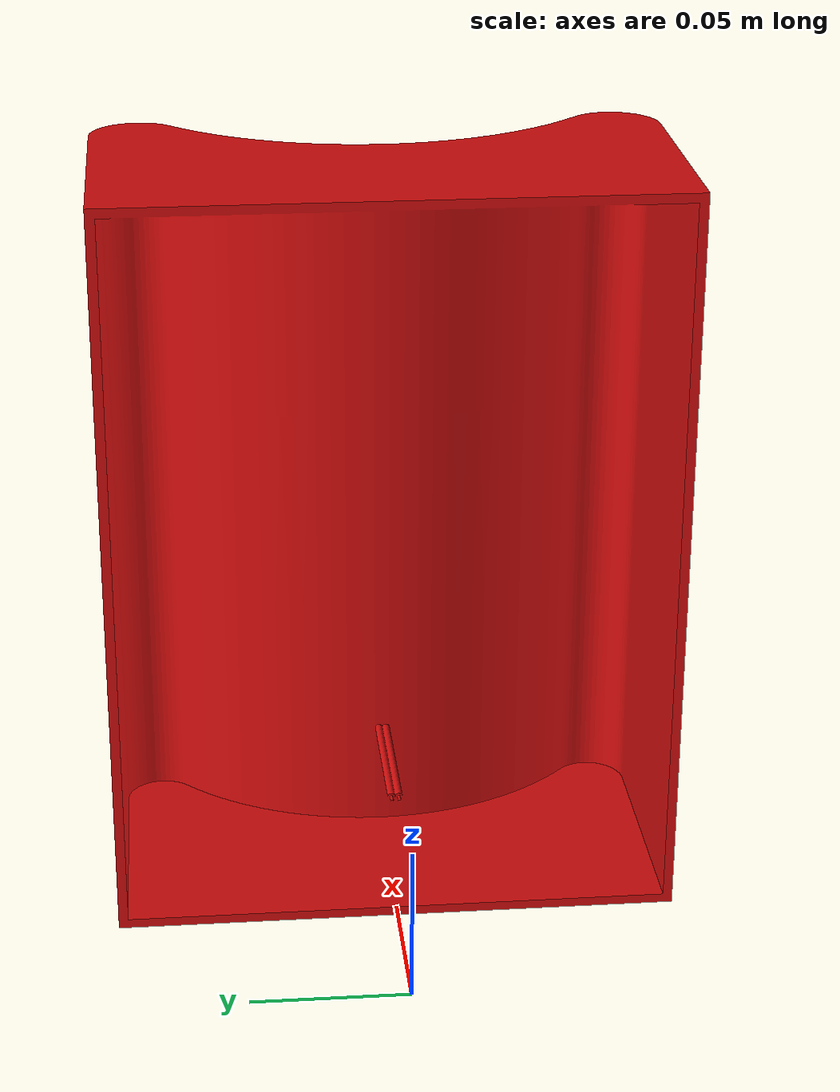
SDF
<?xml version="1.0" ?>
<sdf version="1.6">
  <model name="turtlebot_dock">
    <link name="link">
      <inertial>
        <mass>1000</mass>
        <inertia>
          <ixx>840083.33</ixx>
          <ixy>0</ixy>
          <ixz>0</ixz>
          <iyy>475500.0</iyy>
          <iyz>0</iyz>
          <izz>1302083.33</izz>
        </inertia>
      </inertial>
      <collision name="collision">
        <geometry>
          <mesh>
            <uri>model://turtlebot_dock/meshes/turtlebot_dock.stl</uri>
            <scale>0.001 0.001 0.001</scale>
          </mesh>
        </geometry>
		<surface>
          <friction>
            <ode>
              <mu>0.5</mu>
              <mu2>0.5</mu2>
              <fdir1>0 0 0</fdir1>
              <slip1>0</slip1>
              <slip2>0</slip2>
            </ode>
        </friction>
          </surface>
      </collision>
      <visual name="visual">
	    <geometry>
          <mesh>
            <uri>model://turtlebot_dock/meshes/turtlebot_dock.stl</uri>
            <scale>0.001 0.001 0.001</scale>
          </mesh>
        </geometry>
         <material>
          <ambient>0.35 0.02 0.02 1.0</ambient>   <!-- Dark red ambient -->
          <diffuse>0.85 0.05 0.05 1.0</diffuse>   <!-- Rich silk red -->
          <specular>0.6 0.4 0.4 1.0</specular>    <!-- Shiny highlight like silk PLA -->
          <emissive>0.0 0.0 0.0 1.0</emissive>    <!-- No emissive -->
        </material>
      <meta> <layer> 2 </layer></meta>
</visual>
    </link>
<static>1</static>
  </model>
</sdf>
